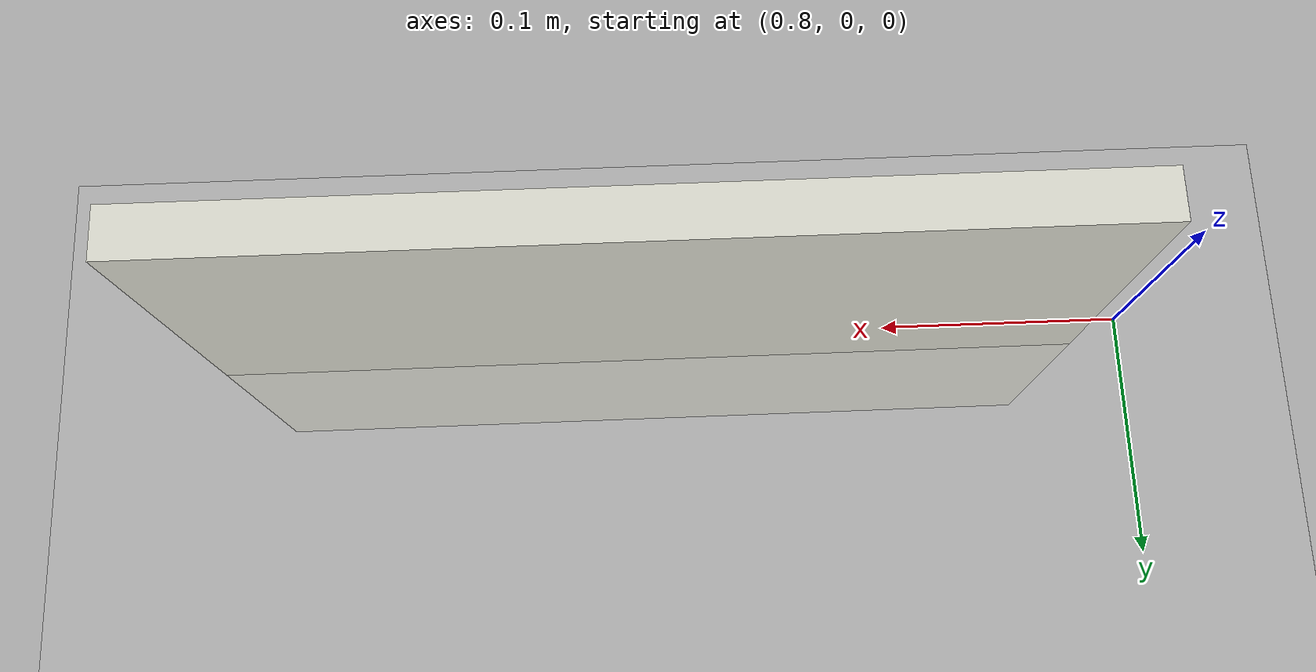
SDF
<?xml version="1.0" ?>

<sdf version="1.6">
  <world name="default">

    <!-- Plugin for simulating physics -->
    <plugin
      filename="gz-sim-physics-system"
      name="gz::sim::systems::Physics">
      <engine>
        <filename>libgz-physics-bullet-featherstone-plugin.so</filename>
      </engine>
    </plugin>

    <!-- Plugin for handling user commands -->
    <plugin
      filename="gz-sim-user-commands-system"
      name="gz::sim::systems::UserCommands">
    </plugin>

    <!-- Plugin for broadcasting scene updates -->
    <plugin
      filename="gz-sim-scene-broadcaster-system"
      name="gz::sim::systems::SceneBroadcaster">
    </plugin>

    <!-- Plugin for handling sensors like the LIDAR -->
    <!-- Using ogre (1.x) instead of ogre2 for better compatibility with software
         rendering (llvmpipe / XRDP). Switch to ogre2 if GPU passthrough is available. -->
    <plugin
      filename="gz-sim-sensors-system"
      name="gz::sim::systems::Sensors">
      <render_engine>ogre</render_engine>
    </plugin>

    <!-- To add realistic gravity, do: 0.0 0.0 -9.8, otherwise do 0.0 0.0 0.0 -->
    <gravity>0.0 0.0 -9.8</gravity>

    <!-- Local directional light (replaces the remote Fuel Sun model to avoid network fetches) -->
    <light type="directional" name="sun">
      <cast_shadows>true</cast_shadows>
      <pose>0 0 10 0 0 0</pose>
      <diffuse>0.8 0.8 0.8 1</diffuse>
      <specular>0.2 0.2 0.2 1</specular>
      <attenuation>
        <range>1000</range>
        <constant>0.9</constant>
        <linear>0.01</linear>
        <quadratic>0.001</quadratic>
      </attenuation>
      <direction>-0.5 0.1 -0.9</direction>
    </light>

    <!-- Local Ground Plane with modified friction -->
    <model name="ground_plane">
      <static>true</static>
      <link name="link">
        <collision name="collision">
          <geometry>
            <plane>
              <normal>0 0 1</normal>
            </plane>
          </geometry>
          <surface>
            <friction>
              <torsional>
                <coefficient>0.0</coefficient>
              </torsional>
            </friction>
          </surface>
        </collision>
        <visual name="visual">
          <geometry>
            <plane>
              <normal>0 0 1</normal>
              <size>100 100</size>
            </plane>
          </geometry>
          <material>
            <ambient>0.8 0.8 0.8 1</ambient>
            <diffuse>0.8 0.8 0.8 1</diffuse>
            <specular>0.8 0.8 0.8 1</specular>
          </material>
        </visual>
      </link>
    </model>

    <!-- Define scene properties -->
    <scene>
      <shadows>false</shadows>
    </scene>

    <!-- Calibration board placed at x=2, y=0, z=0 -->
    <include>
      <uri>model://calibration_board</uri>
      <name>calibration_board</name>
      <pose>1 0 0.015 0 0 0</pose>
    </include>

  </world>
</sdf>

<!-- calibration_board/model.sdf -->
<sdf version="1.7">
  <model name="calibration_board">
    <static>true</static>
    <link name="link">
      <visual name="visual">
        <geometry>
          <box>
            <size>0.36 0.02 0.24</size>
          </box>
        </geometry>
        <material>
          <ambient>0.9 0.9 0.85 1</ambient>
          <diffuse>0.9 0.9 0.85 1</diffuse>
        </material>
      </visual>
      <collision name="collision">
        <geometry>
          <box>
            <size>0.36 0.02 0.24</size>
          </box>
        </geometry>
      </collision>
    </link>
  </model>
</sdf>
